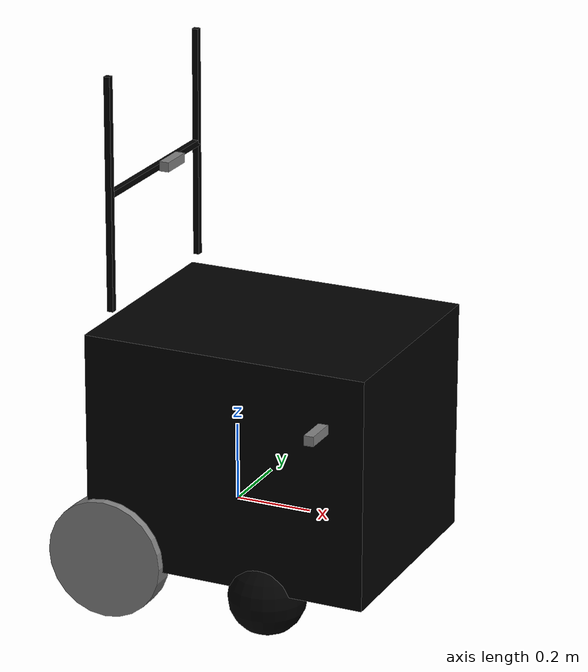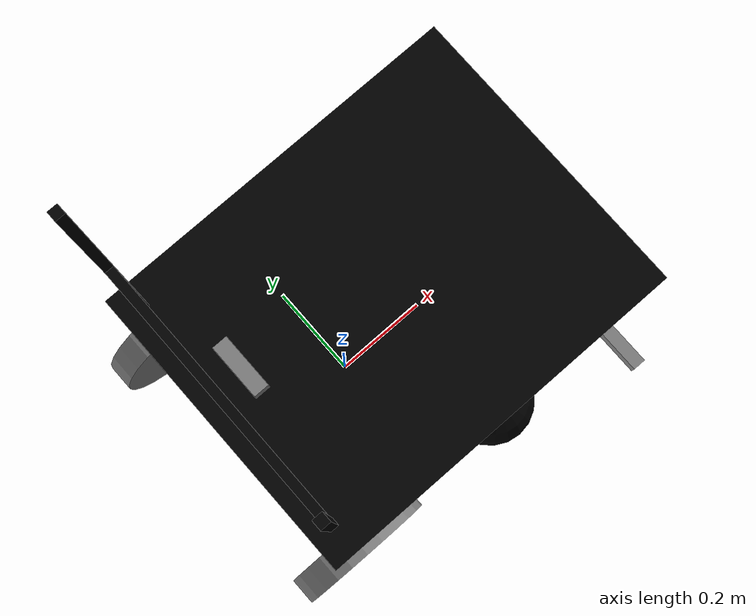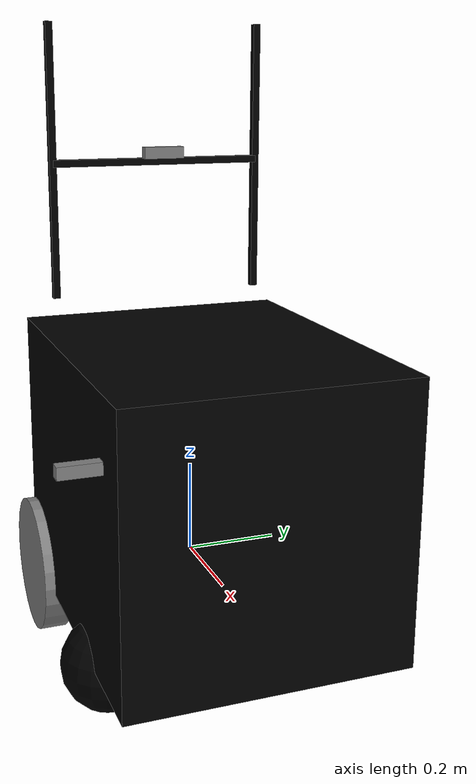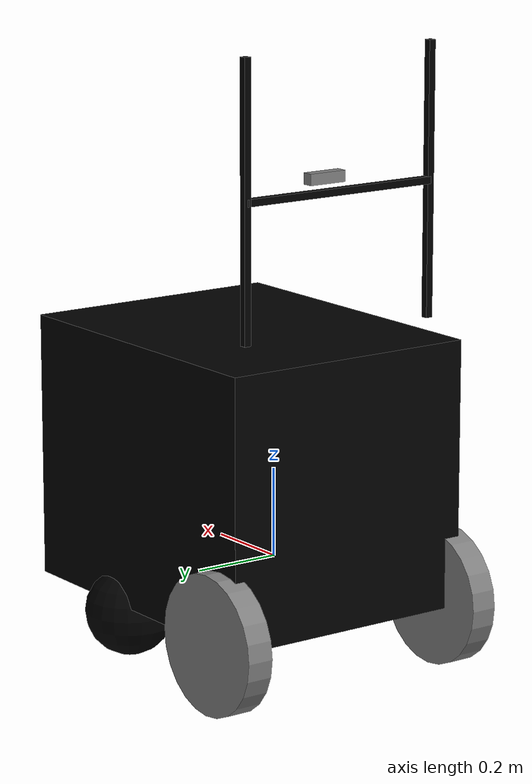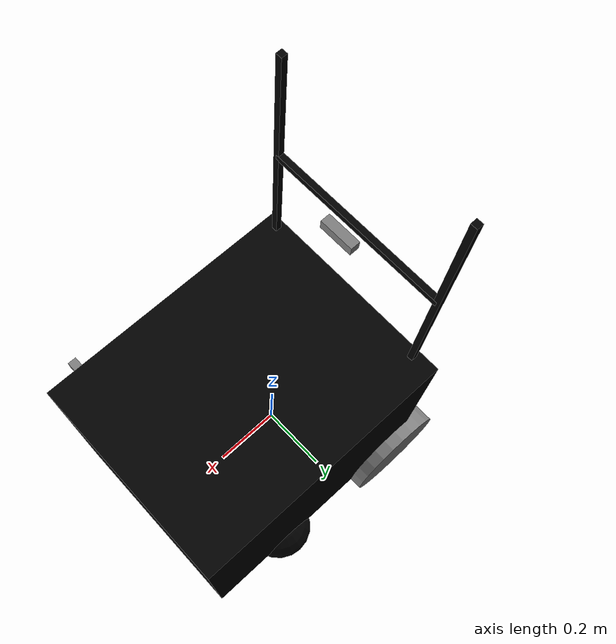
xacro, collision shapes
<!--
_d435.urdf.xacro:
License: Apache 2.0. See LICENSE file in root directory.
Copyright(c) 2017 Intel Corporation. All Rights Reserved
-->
<?xml version="1.0" encoding="UTF-8"?>
<robot name="wheelchair2"
	xmlns:xacro="http://www.ros.org/wiki/xacro">
	<!--Include
	Files-->
	<xacro:include filename="$(find wheelchair2_description)/urdf/links_joints.urdf.xacro" />
	<xacro:include filename="$(find wheelchair2_description)/urdf/wheelchair2_gazebo.urdf.xacro" />
	<xacro:include filename="$(find wheelchair2_description)/urdf/_d435.urdf.xacro" />
	<!--xacro:include filename="$(find wheelchair2_description)/urdf/_d455.urdf.xacro" /-->

	<link name="base_link" />

	<joint name="base_joint" type="fixed">
		<parent link="base_link" />
		<child link="chassis" />
		<origin xyz="0 0 0.2" rpy="0 0 0" />
	</joint>

	<link name='chassis'>
		<pose>0 0 0.1 0 0 0</pose>

		<inertial>
			<!--ALL
			MASSES IN KILOGRAM-->
			<mass value="8.96" />
			<origin xyz="0 0 0" rpy=" 0 0 0" />
			<!--ALL
			INERTIA VALUES IN KILOGRAM PER SQUARE METER-->
			<inertia ixx="2.83" ixy="-0.12" ixz="-1.17" iyy="3.47" iyz="0.29" izz="0.73" />
		</inertial>

		<collision>
			<origin xyz="0.1 0 0" rpy=" 0 0 0" />
			<geometry>
				<box size="0.75 0.60 0.60" />
			</geometry>
			<material name="black" />
		</collision>

		<visual>
			<origin xyz="0 0 0" rpy=" 0 0 3.14" />
			<geometry>
				<mesh filename="file://$(find wheelchair2_description)/wheelchair2.dae" scale="0.01 0.01 0.01" />
			</geometry>
			<material name="black" />
		</visual>
	</link>

	<!--Left
	Wheel-->
	<xacro:m1_link_cylinder name="left_wheel" origin_rpy="0 0 0" origin_xyz="0 0 0.027" mass="0.10441" ixx="0.1000000042" ixy="0" ixz="0" iyy="0.1000000042" iyz="0" izz="0.1000000040" radius="0.155" length="0.06" radius_2="0.0028" length_2="0.005" material="grey" />
	<!--joint
	between chassis and Left wheel-->
	<xacro:w_joint name="chassis_to_left_wheel" type="continuous" axis_xyz="0 0 1" axis_rpy="0 0 0" limit_e="100" limit_v="20" damping="1.0" friction="200000.0" origin_rpy="-1.57 0 0" origin_xyz="-0.22 0.28 -0.285" parent="chassis" child="left_wheel" />
	<!-- inertia values are added by 0.1 in both left and right wheel to avoid collapsing of model in
	gazebo-->

	<!--joint
	between chassis and Right Wheel-->
	<!--Right
	Wheel-->
	<xacro:m1_link_cylinder name="right_wheel" origin_rpy="0 0 0" origin_xyz="0 0 0.027" mass="0.10441" ixx="0.1000000042" ixy="0" ixz="0" iyy="0.1000000042" iyz="0" izz="0.1000000040" radius="0.155" length="0.06" radius_2="0.0028" length_2="0.005" material="grey" />

	<xacro:w_joint name="chassis_to_right_wheel" type="continuous" axis_xyz="0 0 1" axis_rpy="0 0 0" limit_e="100" limit_v="20" damping="1.0" friction="200000.0" origin_rpy="-1.57 0 0" origin_xyz="-0.22 -0.32 -0.285" parent="chassis" child="right_wheel" />

	<!--Caster
	1,2 and there joints with Base Link-->

	<xacro:m_link_sphere name="caster1" origin_rpy="0 0 0" origin_xyz="0 0 0" mass="0.45164" ixx="0.100000005621" ixy="0.100000001310" ixz="0.100000001649" iyy="0.100000004345" iyz="0.100000002360" izz="0.100000003315" material="black" radius="0.1" radius_2="0.001" />

	<xacro:f_joint name="chassis_to_caster1" type="fixed" axis_xyz="0 0 0" origin_rpy="0 0 0" origin_xyz="0.2 -0.25 -0.33" parent="chassis" child="caster1" />

	<xacro:m_link_sphere name="caster2" origin_rpy="0 0 0" origin_xyz="0 0 0" mass="0.45164" ixx="0.100000005621" ixy="0.100000001310" ixz="0.100000001649" iyy="0.100000004345" iyz="0.100000002360" izz="0.100000003315" material="black" radius="0.1" radius_2="0.001" />

	<xacro:f_joint name="chassis_to_caster2" type="fixed" axis_xyz="0 0 0" origin_rpy="0 0 0" origin_xyz="0.2 0.25 -0.33" parent="chassis" child="caster2" />

	<xacro:f_link_box name="rod1" origin_rpy="0 0 0" origin_xyz="0 0 0" mass="0.45164" ixx="0.100000005621" ixy="0.100000001310" ixz="0.100000001649" iyy="0.100000004345" iyz="0.100000002360" izz="0.100000003315" material="black" size="0.016 0.016 0.6" />

	<xacro:f_joint name="chassis_to_rod1" type="fixed" axis_xyz="0 0 0" origin_rpy="0 0 0" origin_xyz="-0.23 0.24 0.65" parent="chassis" child="rod1" />

	<xacro:f_link_box name="rod2" origin_rpy="0 0 0" origin_xyz="0 0 0" mass="0.45164" ixx="0.100000005621" ixy="0.100000001310" ixz="0.100000001649" iyy="0.100000004345" iyz="0.100000002360" izz="0.100000003315" material="black" size="0.016 0.016 0.6" />

	<xacro:f_joint name="chassis_to_rod2" type="fixed" axis_xyz="0 0 0" origin_rpy="0 0 0" origin_xyz="-0.23 -0.24 0.65" parent="chassis" child="rod2" />

	<xacro:f_link_box name="camera_base_rod" origin_rpy="0 0 0" origin_xyz="0 0 0" mass="0.45164" ixx="0.100000005621" ixy="0.100000001310" ixz="0.100000001649" iyy="0.100000004345" iyz="0.100000002360" izz="0.100000003315" material="black" size="0.016 0.48 0.016" />

	<xacro:f_joint name="chassis_to_camera_base_rod" type="fixed" axis_xyz="0 0 0" origin_rpy="0 0 0" origin_xyz="-0.23 0 0.650" parent="chassis" child="camera_base_rod" />

	<!--Lidar-->

	<!-- joint between chassis and lidar -->
	<!--xacro:f_joint name="chassis_to_rplidar" type="fixed" axis_xyz="0 0 0" origin_rpy="0 0 3.14" origin_xyz="0.23 0 -0.15" parent="chassis" child="rplidar" /-->

	<!--Real_Sense-->

	<xacro:sensor_d435 parent="base_link" name="camera2" topics_ns="camera2" pointcloud="true">
		<origin xyz="-0.18 0 0.860" rpy="0 0 0" />
	</xacro:sensor_d435>

	<xacro:sensor_d435 parent="camera_base_rod" name="camera1" topics_ns="camera1" pointcloud="true">
		<origin xyz="0.60 -0.34 -0.50" rpy="0 -0.01 0" />
	</xacro:sensor_d435>

	<!--Gazebo
	Plugin-->
	<gazebo>
		<plugin name="gazebo_ros_control" filename="libgazebo_ros_control.so">
			<robotNamespace>/wheelchair2</robotNamespace>
			<legacyModeNS>true</legacyModeNS>
		</plugin>
	</gazebo>

</robot>

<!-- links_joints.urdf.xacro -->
<robot xmlns:xacro="http://www.ros.org/wiki/xacro">
	<!--Include
	Files-->
	<xacro:include filename="$(find wheelchair2_description)/urdf/common_properties.urdf.xacro" />
	<!--macro
	for cylinder shaped links(r,lwheels and lidar)-->
	<xacro:macro name="m_link_cylinder"
		params="name origin_xyz origin_rpy mass ixx ixy ixz iyy iyz izz filename scale material ">
		<link name="${name}">
			<inertial>				<!--Inertial
				valuse include origin, mass and inertias as per CAD model-->
				<mass value="${mass}" />
				<origin rpy="${origin_rpy}" xyz="${origin_xyz}" />
				<inertia ixx="${ixx}" ixy="${ixy}" ixz="${ixz}" iyy="${iyy}" iyz="${iyz}" izz="${izz}" />
				<!--
				Taken at the output coordinate system-->
			</inertial>
			<collision>				<!-- Collision values include dimensions and origin-->
				<origin rpy="${origin_rpy}" xyz="${origin_xyz}" />
				<geometry>
					<mesh filename="${filename}" scale="${scale}" />
				</geometry>
			</collision>
			<visual>
				<origin rpy="${origin_rpy}" xyz="${origin_xyz}" />
				<geometry>
					<mesh filename="${filename}" scale="${scale}" />
				</geometry>
				<material name="${material}" />
			</visual>
		</link>
	</xacro:macro>

	<!--macro
	for cylinder shaped links(r,lwheels and lidar)-->
	<xacro:macro name="m1_link_cylinder"
		params="name origin_xyz origin_rpy mass radius length radius_2 length_2 ixx ixy ixz iyy iyz izz material ">
		<link name="${name}">
			<inertial>				<!--Inertial
				valuse include origin, mass and inertias as per CAD model-->
				<mass value="${mass}" />
				<origin rpy="${origin_rpy}" xyz="${origin_xyz}" />
				<inertia ixx="${ixx}" ixy="${ixy}" ixz="${ixz}" iyy="${iyy}" iyz="${iyz}" izz="${izz}" />
				<!--
				Taken at the output coordinate system-->
			</inertial>
			<collision>				<!-- Collision values include dimensions and origin-->
				<origin rpy="${origin_rpy}" xyz="${origin_xyz}" />
				<geometry>
					<cylinder radius="${radius}" length="${length}" />
				</geometry>
			</collision>
			<visual>				<!-- Visual valuse include origin, material and mesh to make model look similar to
				real robot-->
				<origin rpy="${origin_rpy}" xyz="${origin_xyz}" />
				<geometry>
					<cylinder radius="${radius_2}" length="${length_2}" />
				</geometry>
				<material name="${material}" />
			</visual>
		</link>
	</xacro:macro>

	<!--macro
	for box shaped links(r,lwheels and lidar)-->
	<xacro:macro name="m_link_box"
		params="name origin_xyz origin_rpy size mass ixx ixy ixz iyy iyz izz v_origin_xyz v_origin_rpy filename scale material ">
		<link name="${name}">
			<inertial>				<!--Inertial
				valuse include origin, mass and inertias as per CAD model-->
				<mass value="${mass}" />
				<origin rpy="${origin_rpy}" xyz="${origin_xyz}" />
				<inertia ixx="${ixx}" ixy="${ixy}" ixz="${ixz}" iyy="${iyy}" iyz="${iyz}" izz="${izz}" />
				<!--
				Taken at the output coordinate system-->
			</inertial>
			<collision>				<!-- Collision values include dimensions and origin-->
				<origin rpy="${origin_rpy}" xyz="${origin_xyz}" />
				<geometry>
					<box size="${size}" />
				</geometry>
			</collision>
			<visual>				<!-- Visual valuse include origin, material and mesh 0.057 0.083 0.29to make model
				look similar to real robot-->
				<origin rpy="${v_origin_rpy}" xyz="${v_origin_xyz}" />
				<geometry>
				</geometry>
				<material name="${material}" />
			</visual>
		</link>
	</xacro:macro>

	<xacro:macro name="f_link_box"
		params="name origin_xyz origin_rpy size mass ixx ixy ixz iyy iyz izz material ">
		<link name="${name}">
			<inertial>				<!--Inertial
				valuse include origin, mass and inertias as per CAD model-->
				<mass value="${mass}" />
				<origin rpy="${origin_rpy}" xyz="${origin_xyz}" />
				<inertia ixx="${ixx}" ixy="${ixy}" ixz="${ixz}" iyy="${iyy}" iyz="${iyz}" izz="${izz}" />
				<!--
				Taken at the output coordinate system-->
			</inertial>
			<collision>				<!-- Collision values include dimensions and origin-->
				<origin rpy="${origin_rpy}" xyz="${origin_xyz}" />
				<geometry>
					<box size="${size}" />
				</geometry>
			</collision>
			<visual>				<!-- Visual valuse include origin, material and mesh to make model look similar to
				real robot-->
				<origin rpy="${origin_rpy}" xyz="${origin_xyz}" />
				<geometry>
					<box size="${size}" />
				</geometry>
				<material name="${material}" />
			</visual>
		</link>
	</xacro:macro>

	<xacro:macro name="m_link_sphere"
		params="name origin_xyz origin_rpy radius radius_2 mass ixx ixy ixz iyy iyz izz material">
		<link name="${name}">
			<inertial>				<!--Inertial
				valuse include origin, mass and inertias as per CAD model-->
				<mass value="${mass}" />
				<origin rpy="${origin_rpy}" xyz="${origin_xyz}" />
				<inertia ixx="${ixx}" ixy="${ixy}" ixz="${ixz}" iyy="${iyy}" iyz="${iyz}" izz="${izz}" />
			</inertial>
			<collision>				<!-- Collision values include dimensions and origin-->
				<origin rpy="${origin_rpy}" xyz="${origin_xyz}" />
				<geometry>
					<sphere radius="${radius}" />
				</geometry>
			</collision>
			<visual>				<!-- Visual valuse include origin, material and mesh to make model look similar to
				real robot-->
				<origin rpy="${origin_rpy}" xyz="${origin_xyz}" />
				<geometry>
					<sphere radius="${radius_2}" />
				</geometry>
				<material name="${material}" />
			</visual>
		</link>
	</xacro:macro>
	<!-- macro of moving joints like l,rwheels-->
	<!-- It includes parent link, child link, limits, axis, origin, dynamics and transmission of the
	robot-->
	<xacro:macro name="m_joint"
		params="name type axis_xyz axis_rpy origin_rpy origin_xyz parent limit_e limit_v lower upper child damping friction ">
		<joint name="${name}" type="${type}">
			<axis xyz="${axis_xyz}" rpy="${axis_rpy}" />
			<limit effort="${limit_e}" velocity="${limit_v}" lower="${lower}" upper="${upper}" />
			<origin rpy="${origin_rpy}" xyz="${origin_xyz}" />
			<dynamics damping="${damping}" friction="${friction}" />
			<parent link="${parent}" />
			<child link="${child}" />
		</joint>
	</xacro:macro>

	<xacro:macro name="w_joint"
		params="name type axis_xyz axis_rpy origin_rpy origin_xyz parent limit_e limit_v child damping friction ">
		<joint name="${name}" type="${type}">
			<axis xyz="${axis_xyz}" rpy="${axis_rpy}" />
			<limit effort="${limit_e}" velocity="${limit_v}" />
			<origin rpy="${origin_rpy}" xyz="${origin_xyz}" />
			<dynamics damping="${damping}" friction="${friction}" />
			<parent link="${parent}" />
			<child link="${child}" />
		</joint>
	</xacro:macro>

	<xacro:macro name="m2_joint"
		params="name type axis_xyz axis_rpy origin_rpy origin_xyz parent limit_e limit_v lower upper child damping friction ">
		<joint name="${name}" type="${type}">
			<axis xyz="${axis_xyz}" rpy="${axis_rpy}" />
			<limit effort="${limit_e}" velocity="${limit_v}" lower="${lower}" upper="${upper}" />
			<origin rpy="${origin_rpy}" xyz="${origin_xyz}" />
			<dynamics damping="${damping}" friction="${friction}" />
			<parent link="${parent}" />
			<child link="${child}" />
		</joint>
	</xacro:macro>

	<xacro:macro name="mimic_joint"
		params="name type axis_xyz axis_rpy origin_rpy origin_xyz parent joint multiplier offset limit_e limit_v lower upper child damping friction ">
		<joint name="${name}" type="${type}">
			<axis xyz="${axis_xyz}" rpy="${axis_rpy}" />
			<limit effort="${limit_e}" velocity="${limit_v}" lower="${lower}" upper="${upper}" />
			<origin rpy="${origin_rpy}" xyz="${origin_xyz}" />
			<dynamics damping="${damping}" friction="${friction}" />
			<parent link="${parent}" />
			<child link="${child}" />
			<mimic joint="${joint}" multiplier="${multiplier}" offset="${offset}" />
		</joint>
	</xacro:macro>

	<!-- macro of fixed joints like casters and rplidar-->
	<!-- It includes parent link, child link, axis and origin of the robot-->
	<xacro:macro name="f_joint" params="name type axis_xyz origin_rpy origin_xyz parent child">
		<joint name="${name}" type="${type}">
			<axis xyz="${axis_xyz}" />
			<origin rpy="${origin_rpy}" xyz="${origin_xyz}" />
			<parent link="${parent}" />
			<child link="${child}" />
		</joint>
	</xacro:macro>

</robot>

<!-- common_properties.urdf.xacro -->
<robot name="xacro_properties" xmlns:xacro="http://www.ros.org/wiki/xacro">

	<material name="grey">
		<color rgba="0.5 0.5 0.5 1.0" />
	</material>

	<material name="black">
		<color rgba="0.0 0.0 0.0 1.0" />
	</material>

	<material name="red">
		<color rgba="1.0 0.0 0.0 1.0" />
	</material>
	<material name="green">
		<color rgba="0.0 1.0 0.0 1.0" />
	</material>

</robot>

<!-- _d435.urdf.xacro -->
<robot name="sensor_d435"
	xmlns:xacro="http://ros.org/wiki/xacro">
	<!--File
	includes-->
	<xacro:include filename="$(find wheelchair2_description)/urdf/_d435.gazebo.urdf.xacro" />

	<xacro:macro name="sensor_d435" params="name:=camera topics_ns:=camera pointcloud:=false parent *origin">
		<xacro:property name="M_PI" value="3.1415926535897931" />

		<!-- The following values are approximate, and the camera node
     publishing TF values with actual calibrated camera extrinsic values -->
		<xacro:property name="d435_cam_depth_to_left_ir_offset" value="0.0" />
		<xacro:property name="d435_cam_depth_to_right_ir_offset" value="-0.050" />
		<xacro:property name="d435_cam_depth_to_color_offset" value="0.015" />

		<!-- The following values model the aluminum peripherial case for the
  	D435 camera, with the camera joint represented by the actual
  	peripherial camera tripod mount -->
		<xacro:property name="d435_cam_width" value="0.090" />
		<xacro:property name="d435_cam_height" value="0.025" />
		<xacro:property name="d435_cam_depth" value="0.02505" />
		<xacro:property name="d435_cam_mount_from_center_offset" value="0.0149" />

		<!-- The following offset is relative the the physical D435 camera peripherial
  	camera tripod mount -->
		<xacro:property name="d435_cam_depth_px" value="${d435_cam_mount_from_center_offset}" />
		<xacro:property name="d435_cam_depth_py" value="0.0175" />
		<xacro:property name="d435_cam_depth_pz" value="${d435_cam_height/2}" />

		<material name="${name}_aluminum">
			<color rgba="0.5 0.5 0.5 1" />
		</material>

		<!-- camera body, with origin at bottom screw mount -->
		<joint name="${name}_joint" type="fixed">
			<xacro:insert_block name="origin" />
			<parent link="${parent}" />
			<child link="${name}_bottom_screw_frame" />
		</joint>
		<link name="${name}_bottom_screw_frame" />

		<joint name="${name}_link_joint" type="fixed">
			<origin xyz="0 ${d435_cam_depth_py} ${d435_cam_depth_pz}" rpy="0 0 0" />
			<parent link="${name}_bottom_screw_frame" />
			<child link="${name}_link" />
		</joint>

		<link name="${name}_link">
			<visual>
				<origin xyz="${d435_cam_mount_from_center_offset} ${-d435_cam_depth_py} 0" rpy="${M_PI/2} 0 ${M_PI/2}" />
				<geometry>
					<mesh filename="file://$(find wheelchair2_description)/meshes/d435.dae" />
				</geometry>
				<material name="${name}_aluminum" />
			</visual>
			<collision>
				<origin xyz="0 ${-d435_cam_depth_py} 0" rpy="0 0 0" />
				<geometry>
					<box size="${d435_cam_depth} ${d435_cam_width} ${d435_cam_height}" />
				</geometry>
			</collision>
			<inertial>
				<!-- The following are not reliable values, and should not be used for modeling -->
				<mass value="0.564" />
				<origin xyz="0 0 0" />
				<inertia ixx="0.003881243" ixy="0.0" ixz="0.0" iyy="0.000498940" iyz="0.0" izz="0.003879257" />
			</inertial>
		</link>

		<!-- camera depth joints and links -->
		<joint name="${name}_depth_joint" type="fixed">
			<origin xyz="0 0 0" rpy="0 0 0" />
			<parent link="${name}_link" />
			<child link="${name}_depth_frame" />
		</joint>
		<link name="${name}_depth_frame" />

		<joint name="${name}_depth_optical_joint" type="fixed">
			<origin xyz="0 0 0" rpy="${-M_PI/2} 0 ${-M_PI/2}" />
			<parent link="${name}_depth_frame" />
			<child link="${name}_depth_optical_frame" />
		</joint>
		<link name="${name}_depth_optical_frame" />

		<!-- camera left IR joints and links -->
		<joint name="${name}_left_ir_joint" type="fixed">
			<origin xyz="0 ${d435_cam_depth_to_left_ir_offset} 0" rpy="0 0 0" />
			<parent link="${name}_depth_frame" />
			<child link="${name}_left_ir_frame" />
		</joint>
		<link name="${name}_left_ir_frame" />

		<joint name="${name}_left_ir_optical_joint" type="fixed">
			<origin xyz="0 0 0" rpy="${-M_PI/2} 0 ${-M_PI/2}" />
			<parent link="${name}_left_ir_frame" />
			<child link="${name}_left_ir_optical_frame" />
		</joint>
		<link name="${name}_left_ir_optical_frame" />

		<!-- camera right IR joints and links -->
		<joint name="${name}_right_ir_joint" type="fixed">
			<origin xyz="0 ${d435_cam_depth_to_right_ir_offset} 0" rpy="0 0 0" />
			<parent link="${name}_depth_frame" />
			<child link="${name}_right_ir_frame" />
		</joint>
		<link name="${name}_right_ir_frame" />

		<joint name="${name}_right_ir_optical_joint" type="fixed">
			<origin xyz="0 0 0" rpy="${-M_PI/2} 0 ${-M_PI/2}" />
			<parent link="${name}_right_ir_frame" />
			<child link="${name}_right_ir_optical_frame" />
		</joint>
		<link name="${name}_right_ir_optical_frame" />

		<!-- camera color joints and links -->
		<joint name="${name}_color_joint" type="fixed">
			<origin xyz="0 ${d435_cam_depth_to_color_offset} 0" rpy="0 0 0" />
			<parent link="${name}_depth_frame" />
			<child link="${name}_color_frame" />
		</joint>
		<link name="${name}_color_frame" />

		<joint name="${name}_color_optical_joint" type="fixed">
			<origin xyz="0 0 0" rpy="${-M_PI/2} 0 ${-M_PI/2}" />
			<parent link="${name}_color_frame" />
			<child link="${name}_color_optical_frame" />
		</joint>
		<link name="${name}_color_optical_frame" />

		<!-- Realsense Gazebo Plugin -->
		<xacro:gazebo_d435 camera_name="${name}" reference_link="${name}_link" topics_ns="${topics_ns}" depth_optical_frame="${name}_depth_optical_frame" color_optical_frame="${name}_color_optical_frame" infrared1_optical_frame="${name}_left_ir_otical_frame" infrared2_optical_frame="${name}_right_ir_optical_frame" pointcloud="${pointcloud}" />

	</xacro:macro>
</robot>
